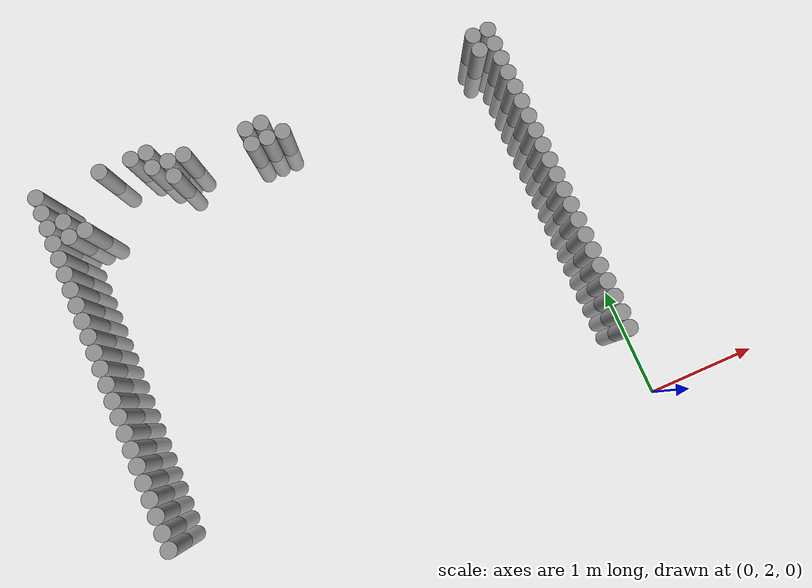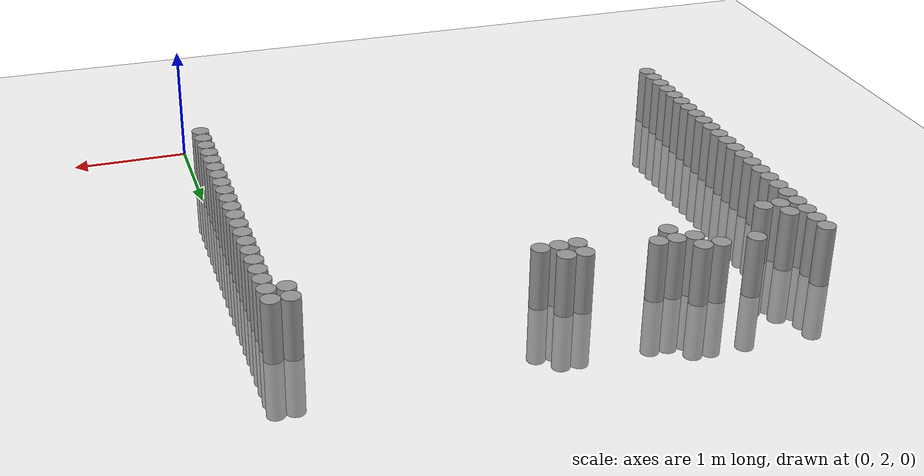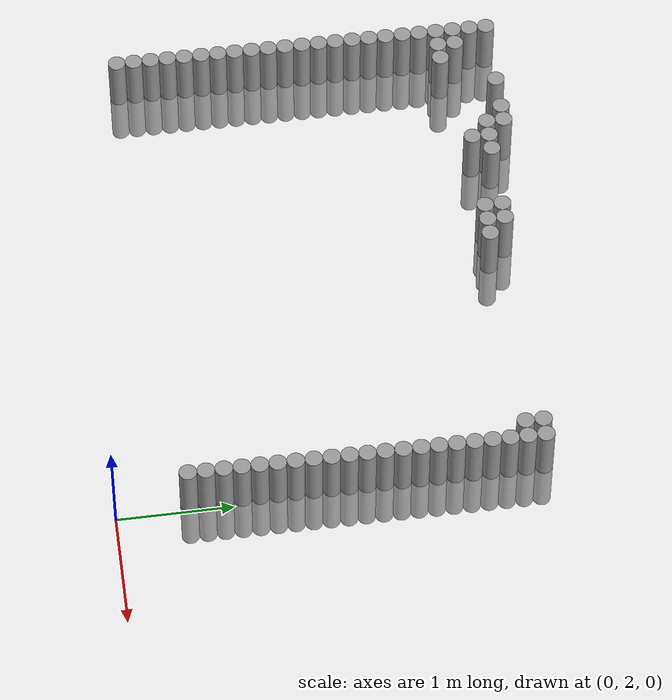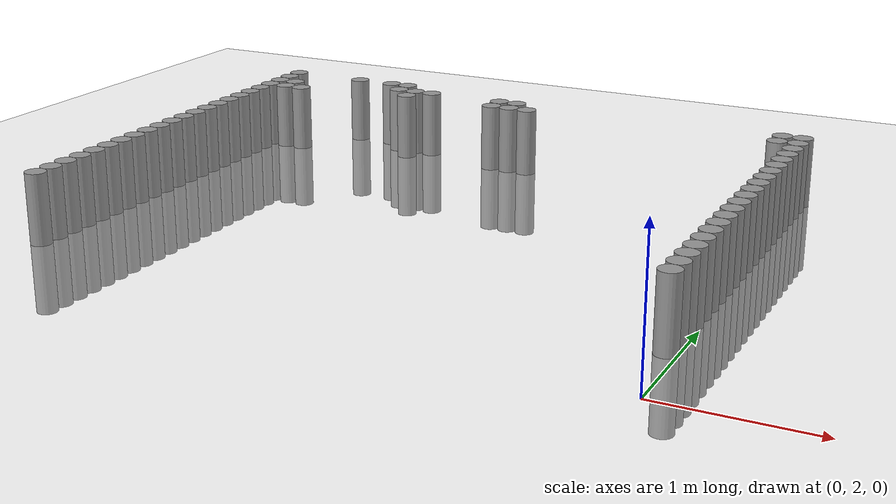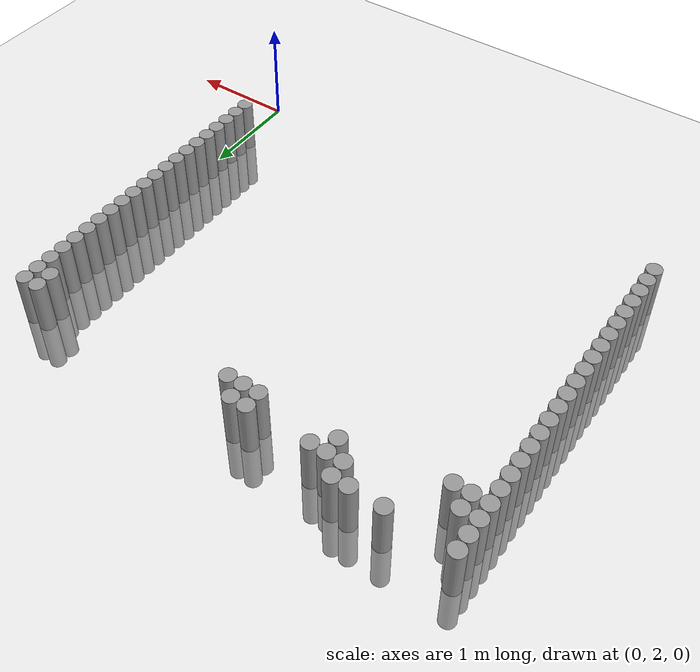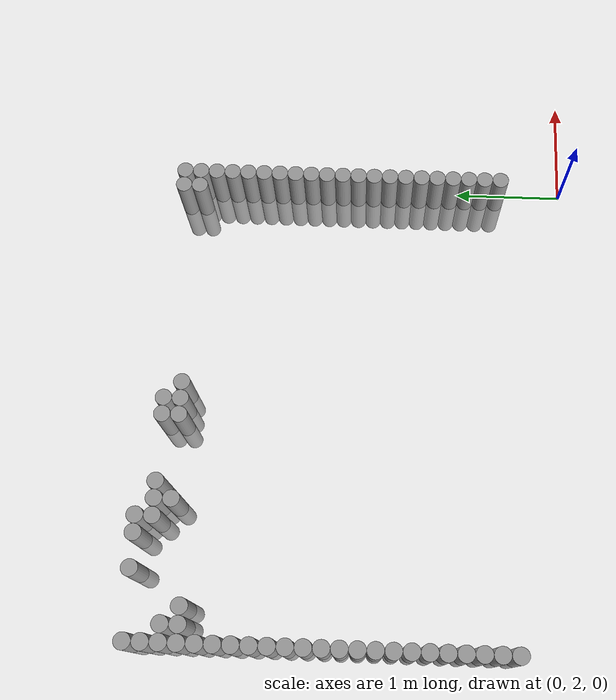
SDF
<sdf version="1.6">
 <world name="default">
  <model name="ground_plane">
   <static>1</static>
   <static>1</static>
   <link name="link">
    <collision name="collision">
     <geometry><plane><normal>0 0 1</normal><size>100 100</size></plane></geometry>
     <surface><friction><ode><mu>100</mu><mu2>50</mu2></ode></friction></surface>
    </collision>
    <visual name="visual">
     <cast_shadows>0</cast_shadows>
     <geometry><plane><normal>0 0 1</normal><size>100 100</size></plane></geometry>
     <material>
      <script><uri>file://media/materials/scripts/gazebo.material</uri><name>Gazebo/Grey</name></script>
     </material>
    </visual>
   </link>
  </model>
  <model name="unit_cylinder_61">
   <static>1</static>
   <pose>-4.425000 2.475000 0.000000 0.000000 0.000000 0.000000</pose>
   <link name="link">
    <inertial>
     <mass>1</mass>
     <inertia><ixx>0.145833</ixx><ixy>0</ixy><ixz>0</ixz><iyy>0.145833</iyy><iyz>0</iyz><izz>0.125</izz></inertia>
    </inertial>
    <collision name="collision">
     <geometry><cylinder><radius>0.075000</radius><length>1</length></cylinder></geometry>
    </collision>
    <visual name="visual">
     <geometry><cylinder><radius>0.075000</radius><length>1</length></cylinder></geometry>
     <material>
      <script><name>Gazebo/Grey</name><uri>file://media/materials/scripts/gazebo.material</uri></script>
     </material>
    </visual>
   </link>
  </model>
  <model name="unit_cylinder_62">
   <static>1</static>
   <pose>-0.075000 2.625000 0.000000 0.000000 0.000000 0.000000</pose>
   <link name="link">
    <inertial>
     <mass>1</mass>
     <inertia><ixx>0.145833</ixx><ixy>0</ixy><ixz>0</ixz><iyy>0.145833</iyy><iyz>0</iyz><izz>0.125</izz></inertia>
    </inertial>
    <collision name="collision">
     <geometry><cylinder><radius>0.075000</radius><length>1</length></cylinder></geometry>
    </collision>
    <visual name="visual">
     <geometry><cylinder><radius>0.075000</radius><length>1</length></cylinder></geometry>
     <material>
      <script><name>Gazebo/Grey</name><uri>file://media/materials/scripts/gazebo.material</uri></script>
     </material>
    </visual>
   </link>
  </model>
  <model name="unit_cylinder_63">
   <static>1</static>
   <pose>-4.425000 2.625000 0.000000 0.000000 0.000000 0.000000</pose>
   <link name="link">
    <inertial>
     <mass>1</mass>
     <inertia><ixx>0.145833</ixx><ixy>0</ixy><ixz>0</ixz><iyy>0.145833</iyy><iyz>0</iyz><izz>0.125</izz></inertia>
    </inertial>
    <collision name="collision">
     <geometry><cylinder><radius>0.075000</radius><length>1</length></cylinder></geometry>
    </collision>
    <visual name="visual">
     <geometry><cylinder><radius>0.075000</radius><length>1</length></cylinder></geometry>
     <material>
      <script><name>Gazebo/Grey</name><uri>file://media/materials/scripts/gazebo.material</uri></script>
     </material>
    </visual>
   </link>
  </model>
  <model name="unit_cylinder_64">
   <static>1</static>
   <pose>-0.075000 2.775000 0.000000 0.000000 0.000000 0.000000</pose>
   <link name="link">
    <inertial>
     <mass>1</mass>
     <inertia><ixx>0.145833</ixx><ixy>0</ixy><ixz>0</ixz><iyy>0.145833</iyy><iyz>0</iyz><izz>0.125</izz></inertia>
    </inertial>
    <collision name="collision">
     <geometry><cylinder><radius>0.075000</radius><length>1</length></cylinder></geometry>
    </collision>
    <visual name="visual">
     <geometry><cylinder><radius>0.075000</radius><length>1</length></cylinder></geometry>
     <material>
      <script><name>Gazebo/Grey</name><uri>file://media/materials/scripts/gazebo.material</uri></script>
     </material>
    </visual>
   </link>
  </model>
  <model name="unit_cylinder_65">
   <static>1</static>
   <pose>-4.425000 2.775000 0.000000 0.000000 0.000000 0.000000</pose>
   <link name="link">
    <inertial>
     <mass>1</mass>
     <inertia><ixx>0.145833</ixx><ixy>0</ixy><ixz>0</ixz><iyy>0.145833</iyy><iyz>0</iyz><izz>0.125</izz></inertia>
    </inertial>
    <collision name="collision">
     <geometry><cylinder><radius>0.075000</radius><length>1</length></cylinder></geometry>
    </collision>
    <visual name="visual">
     <geometry><cylinder><radius>0.075000</radius><length>1</length></cylinder></geometry>
     <material>
      <script><name>Gazebo/Grey</name><uri>file://media/materials/scripts/gazebo.material</uri></script>
     </material>
    </visual>
   </link>
  </model>
  <model name="unit_cylinder_66">
   <static>1</static>
   <pose>-0.075000 2.925000 0.000000 0.000000 0.000000 0.000000</pose>
   <link name="link">
    <inertial>
     <mass>1</mass>
     <inertia><ixx>0.145833</ixx><ixy>0</ixy><ixz>0</ixz><iyy>0.145833</iyy><iyz>0</iyz><izz>0.125</izz></inertia>
    </inertial>
    <collision name="collision">
     <geometry><cylinder><radius>0.075000</radius><length>1</length></cylinder></geometry>
    </collision>
    <visual name="visual">
     <geometry><cylinder><radius>0.075000</radius><length>1</length></cylinder></geometry>
     <material>
      <script><name>Gazebo/Grey</name><uri>file://media/materials/scripts/gazebo.material</uri></script>
     </material>
    </visual>
   </link>
  </model>
  <model name="unit_cylinder_67">
   <static>1</static>
   <pose>-4.425000 2.925000 0.000000 0.000000 0.000000 0.000000</pose>
   <link name="link">
    <inertial>
     <mass>1</mass>
     <inertia><ixx>0.145833</ixx><ixy>0</ixy><ixz>0</ixz><iyy>0.145833</iyy><iyz>0</iyz><izz>0.125</izz></inertia>
    </inertial>
    <collision name="collision">
     <geometry><cylinder><radius>0.075000</radius><length>1</length></cylinder></geometry>
    </collision>
    <visual name="visual">
     <geometry><cylinder><radius>0.075000</radius><length>1</length></cylinder></geometry>
     <material>
      <script><name>Gazebo/Grey</name><uri>file://media/materials/scripts/gazebo.material</uri></script>
     </material>
    </visual>
   </link>
  </model>
  <model name="unit_cylinder_68">
   <static>1</static>
   <pose>-0.075000 3.075000 0.000000 0.000000 0.000000 0.000000</pose>
   <link name="link">
    <inertial>
     <mass>1</mass>
     <inertia><ixx>0.145833</ixx><ixy>0</ixy><ixz>0</ixz><iyy>0.145833</iyy><iyz>0</iyz><izz>0.125</izz></inertia>
    </inertial>
    <collision name="collision">
     <geometry><cylinder><radius>0.075000</radius><length>1</length></cylinder></geometry>
    </collision>
    <visual name="visual">
     <geometry><cylinder><radius>0.075000</radius><length>1</length></cylinder></geometry>
     <material>
      <script><name>Gazebo/Grey</name><uri>file://media/materials/scripts/gazebo.material</uri></script>
     </material>
    </visual>
   </link>
  </model>
  <model name="unit_cylinder_69">
   <static>1</static>
   <pose>-4.425000 3.075000 0.000000 0.000000 0.000000 0.000000</pose>
   <link name="link">
    <inertial>
     <mass>1</mass>
     <inertia><ixx>0.145833</ixx><ixy>0</ixy><ixz>0</ixz><iyy>0.145833</iyy><iyz>0</iyz><izz>0.125</izz></inertia>
    </inertial>
    <collision name="collision">
     <geometry><cylinder><radius>0.075000</radius><length>1</length></cylinder></geometry>
    </collision>
    <visual name="visual">
     <geometry><cylinder><radius>0.075000</radius><length>1</length></cylinder></geometry>
     <material>
      <script><name>Gazebo/Grey</name><uri>file://media/materials/scripts/gazebo.material</uri></script>
     </material>
    </visual>
   </link>
  </model>
  <model name="unit_cylinder_70">
   <static>1</static>
   <pose>-0.075000 3.225000 0.000000 0.000000 0.000000 0.000000</pose>
   <link name="link">
    <inertial>
     <mass>1</mass>
     <inertia><ixx>0.145833</ixx><ixy>0</ixy><ixz>0</ixz><iyy>0.145833</iyy><iyz>0</iyz><izz>0.125</izz></inertia>
    </inertial>
    <collision name="collision">
     <geometry><cylinder><radius>0.075000</radius><length>1</length></cylinder></geometry>
    </collision>
    <visual name="visual">
     <geometry><cylinder><radius>0.075000</radius><length>1</length></cylinder></geometry>
     <material>
      <script><name>Gazebo/Grey</name><uri>file://media/materials/scripts/gazebo.material</uri></script>
     </material>
    </visual>
   </link>
  </model>
  <model name="unit_cylinder_71">
   <static>1</static>
   <pose>-4.425000 3.225000 0.000000 0.000000 0.000000 0.000000</pose>
   <link name="link">
    <inertial>
     <mass>1</mass>
     <inertia><ixx>0.145833</ixx><ixy>0</ixy><ixz>0</ixz><iyy>0.145833</iyy><iyz>0</iyz><izz>0.125</izz></inertia>
    </inertial>
    <collision name="collision">
     <geometry><cylinder><radius>0.075000</radius><length>1</length></cylinder></geometry>
    </collision>
    <visual name="visual">
     <geometry><cylinder><radius>0.075000</radius><length>1</length></cylinder></geometry>
     <material>
      <script><name>Gazebo/Grey</name><uri>file://media/materials/scripts/gazebo.material</uri></script>
     </material>
    </visual>
   </link>
  </model>
  <model name="unit_cylinder_72">
   <static>1</static>
   <pose>-0.075000 3.375000 0.000000 0.000000 0.000000 0.000000</pose>
   <link name="link">
    <inertial>
     <mass>1</mass>
     <inertia><ixx>0.145833</ixx><ixy>0</ixy><ixz>0</ixz><iyy>0.145833</iyy><iyz>0</iyz><izz>0.125</izz></inertia>
    </inertial>
    <collision name="collision">
     <geometry><cylinder><radius>0.075000</radius><length>1</length></cylinder></geometry>
    </collision>
    <visual name="visual">
     <geometry><cylinder><radius>0.075000</radius><length>1</length></cylinder></geometry>
     <material>
      <script><name>Gazebo/Grey</name><uri>file://media/materials/scripts/gazebo.material</uri></script>
     </material>
    </visual>
   </link>
  </model>
  <model name="unit_cylinder_73">
   <static>1</static>
   <pose>-4.425000 3.375000 0.000000 0.000000 0.000000 0.000000</pose>
   <link name="link">
    <inertial>
     <mass>1</mass>
     <inertia><ixx>0.145833</ixx><ixy>0</ixy><ixz>0</ixz><iyy>0.145833</iyy><iyz>0</iyz><izz>0.125</izz></inertia>
    </inertial>
    <collision name="collision">
     <geometry><cylinder><radius>0.075000</radius><length>1</length></cylinder></geometry>
    </collision>
    <visual name="visual">
     <geometry><cylinder><radius>0.075000</radius><length>1</length></cylinder></geometry>
     <material>
      <script><name>Gazebo/Grey</name><uri>file://media/materials/scripts/gazebo.material</uri></script>
     </material>
    </visual>
   </link>
  </model>
  <model name="unit_cylinder_74">
   <static>1</static>
   <pose>-0.075000 3.525000 0.000000 0.000000 0.000000 0.000000</pose>
   <link name="link">
    <inertial>
     <mass>1</mass>
     <inertia><ixx>0.145833</ixx><ixy>0</ixy><ixz>0</ixz><iyy>0.145833</iyy><iyz>0</iyz><izz>0.125</izz></inertia>
    </inertial>
    <collision name="collision">
     <geometry><cylinder><radius>0.075000</radius><length>1</length></cylinder></geometry>
    </collision>
    <visual name="visual">
     <geometry><cylinder><radius>0.075000</radius><length>1</length></cylinder></geometry>
     <material>
      <script><name>Gazebo/Grey</name><uri>file://media/materials/scripts/gazebo.material</uri></script>
     </material>
    </visual>
   </link>
  </model>
  <model name="unit_cylinder_75">
   <static>1</static>
   <pose>-4.425000 3.525000 0.000000 0.000000 0.000000 0.000000</pose>
   <link name="link">
    <inertial>
     <mass>1</mass>
     <inertia><ixx>0.145833</ixx><ixy>0</ixy><ixz>0</ixz><iyy>0.145833</iyy><iyz>0</iyz><izz>0.125</izz></inertia>
    </inertial>
    <collision name="collision">
     <geometry><cylinder><radius>0.075000</radius><length>1</length></cylinder></geometry>
    </collision>
    <visual name="visual">
     <geometry><cylinder><radius>0.075000</radius><length>1</length></cylinder></geometry>
     <material>
      <script><name>Gazebo/Grey</name><uri>file://media/materials/scripts/gazebo.material</uri></script>
     </material>
    </visual>
   </link>
  </model>
  <model name="unit_cylinder_76">
   <static>1</static>
   <pose>-0.075000 3.675000 0.000000 0.000000 0.000000 0.000000</pose>
   <link name="link">
    <inertial>
     <mass>1</mass>
     <inertia><ixx>0.145833</ixx><ixy>0</ixy><ixz>0</ixz><iyy>0.145833</iyy><iyz>0</iyz><izz>0.125</izz></inertia>
    </inertial>
    <collision name="collision">
     <geometry><cylinder><radius>0.075000</radius><length>1</length></cylinder></geometry>
    </collision>
    <visual name="visual">
     <geometry><cylinder><radius>0.075000</radius><length>1</length></cylinder></geometry>
     <material>
      <script><name>Gazebo/Grey</name><uri>file://media/materials/scripts/gazebo.material</uri></script>
     </material>
    </visual>
   </link>
  </model>
  <model name="unit_cylinder_77">
   <static>1</static>
   <pose>-4.425000 3.675000 0.000000 0.000000 0.000000 0.000000</pose>
   <link name="link">
    <inertial>
     <mass>1</mass>
     <inertia><ixx>0.145833</ixx><ixy>0</ixy><ixz>0</ixz><iyy>0.145833</iyy><iyz>0</iyz><izz>0.125</izz></inertia>
    </inertial>
    <collision name="collision">
     <geometry><cylinder><radius>0.075000</radius><length>1</length></cylinder></geometry>
    </collision>
    <visual name="visual">
     <geometry><cylinder><radius>0.075000</radius><length>1</length></cylinder></geometry>
     <material>
      <script><name>Gazebo/Grey</name><uri>file://media/materials/scripts/gazebo.material</uri></script>
     </material>
    </visual>
   </link>
  </model>
  <model name="unit_cylinder_78">
   <static>1</static>
   <pose>-0.075000 3.825000 0.000000 0.000000 0.000000 0.000000</pose>
   <link name="link">
    <inertial>
     <mass>1</mass>
     <inertia><ixx>0.145833</ixx><ixy>0</ixy><ixz>0</ixz><iyy>0.145833</iyy><iyz>0</iyz><izz>0.125</izz></inertia>
    </inertial>
    <collision name="collision">
     <geometry><cylinder><radius>0.075000</radius><length>1</length></cylinder></geometry>
    </collision>
    <visual name="visual">
     <geometry><cylinder><radius>0.075000</radius><length>1</length></cylinder></geometry>
     <material>
      <script><name>Gazebo/Grey</name><uri>file://media/materials/scripts/gazebo.material</uri></script>
     </material>
    </visual>
   </link>
  </model>
  <model name="unit_cylinder_79">
   <static>1</static>
   <pose>-4.425000 3.825000 0.000000 0.000000 0.000000 0.000000</pose>
   <link name="link">
    <inertial>
     <mass>1</mass>
     <inertia><ixx>0.145833</ixx><ixy>0</ixy><ixz>0</ixz><iyy>0.145833</iyy><iyz>0</iyz><izz>0.125</izz></inertia>
    </inertial>
    <collision name="collision">
     <geometry><cylinder><radius>0.075000</radius><length>1</length></cylinder></geometry>
    </collision>
    <visual name="visual">
     <geometry><cylinder><radius>0.075000</radius><length>1</length></cylinder></geometry>
     <material>
      <script><name>Gazebo/Grey</name><uri>file://media/materials/scripts/gazebo.material</uri></script>
     </material>
    </visual>
   </link>
  </model>
  <model name="unit_cylinder_80">
   <static>1</static>
   <pose>-0.075000 3.975000 0.000000 0.000000 0.000000 0.000000</pose>
   <link name="link">
    <inertial>
     <mass>1</mass>
     <inertia><ixx>0.145833</ixx><ixy>0</ixy><ixz>0</ixz><iyy>0.145833</iyy><iyz>0</iyz><izz>0.125</izz></inertia>
    </inertial>
    <collision name="collision">
     <geometry><cylinder><radius>0.075000</radius><length>1</length></cylinder></geometry>
    </collision>
    <visual name="visual">
     <geometry><cylinder><radius>0.075000</radius><length>1</length></cylinder></geometry>
     <material>
      <script><name>Gazebo/Grey</name><uri>file://media/materials/scripts/gazebo.material</uri></script>
     </material>
    </visual>
   </link>
  </model>
  <model name="unit_cylinder_81">
   <static>1</static>
   <pose>-4.425000 3.975000 0.000000 0.000000 0.000000 0.000000</pose>
   <link name="link">
    <inertial>
     <mass>1</mass>
     <inertia><ixx>0.145833</ixx><ixy>0</ixy><ixz>0</ixz><iyy>0.145833</iyy><iyz>0</iyz><izz>0.125</izz></inertia>
    </inertial>
    <collision name="collision">
     <geometry><cylinder><radius>0.075000</radius><length>1</length></cylinder></geometry>
    </collision>
    <visual name="visual">
     <geometry><cylinder><radius>0.075000</radius><length>1</length></cylinder></geometry>
     <material>
      <script><name>Gazebo/Grey</name><uri>file://media/materials/scripts/gazebo.material</uri></script>
     </material>
    </visual>
   </link>
  </model>
  <model name="unit_cylinder_82">
   <static>1</static>
   <pose>-0.075000 4.125000 0.000000 0.000000 0.000000 0.000000</pose>
   <link name="link">
    <inertial>
     <mass>1</mass>
     <inertia><ixx>0.145833</ixx><ixy>0</ixy><ixz>0</ixz><iyy>0.145833</iyy><iyz>0</iyz><izz>0.125</izz></inertia>
    </inertial>
    <collision name="collision">
     <geometry><cylinder><radius>0.075000</radius><length>1</length></cylinder></geometry>
    </collision>
    <visual name="visual">
     <geometry><cylinder><radius>0.075000</radius><length>1</length></cylinder></geometry>
     <material>
      <script><name>Gazebo/Grey</name><uri>file://media/materials/scripts/gazebo.material</uri></script>
     </material>
    </visual>
   </link>
  </model>
  <model name="unit_cylinder_83">
   <static>1</static>
   <pose>-4.425000 4.125000 0.000000 0.000000 0.000000 0.000000</pose>
   <link name="link">
    <inertial>
     <mass>1</mass>
     <inertia><ixx>0.145833</ixx><ixy>0</ixy><ixz>0</ixz><iyy>0.145833</iyy><iyz>0</iyz><izz>0.125</izz></inertia>
    </inertial>
    <collision name="collision">
     <geometry><cylinder><radius>0.075000</radius><length>1</length></cylinder></geometry>
    </collision>
    <visual name="visual">
     <geometry><cylinder><radius>0.075000</radius><length>1</length></cylinder></geometry>
     <material>
      <script><name>Gazebo/Grey</name><uri>file://media/materials/scripts/gazebo.material</uri></script>
     </material>
    </visual>
   </link>
  </model>
  <model name="unit_cylinder_84">
   <static>1</static>
   <pose>-0.075000 4.275000 0.000000 0.000000 0.000000 0.000000</pose>
   <link name="link">
    <inertial>
     <mass>1</mass>
     <inertia><ixx>0.145833</ixx><ixy>0</ixy><ixz>0</ixz><iyy>0.145833</iyy><iyz>0</iyz><izz>0.125</izz></inertia>
    </inertial>
    <collision name="collision">
     <geometry><cylinder><radius>0.075000</radius><length>1</length></cylinder></geometry>
    </collision>
    <visual name="visual">
     <geometry><cylinder><radius>0.075000</radius><length>1</length></cylinder></geometry>
     <material>
      <script><name>Gazebo/Grey</name><uri>file://media/materials/scripts/gazebo.material</uri></script>
     </material>
    </visual>
   </link>
  </model>
  <model name="unit_cylinder_85">
   <static>1</static>
   <pose>-4.425000 4.275000 0.000000 0.000000 0.000000 0.000000</pose>
   <link name="link">
    <inertial>
     <mass>1</mass>
     <inertia><ixx>0.145833</ixx><ixy>0</ixy><ixz>0</ixz><iyy>0.145833</iyy><iyz>0</iyz><izz>0.125</izz></inertia>
    </inertial>
    <collision name="collision">
     <geometry><cylinder><radius>0.075000</radius><length>1</length></cylinder></geometry>
    </collision>
    <visual name="visual">
     <geometry><cylinder><radius>0.075000</radius><length>1</length></cylinder></geometry>
     <material>
      <script><name>Gazebo/Grey</name><uri>file://media/materials/scripts/gazebo.material</uri></script>
     </material>
    </visual>
   </link>
  </model>
  <model name="unit_cylinder_86">
   <static>1</static>
   <pose>-0.075000 4.425000 0.000000 0.000000 0.000000 0.000000</pose>
   <link name="link">
    <inertial>
     <mass>1</mass>
     <inertia><ixx>0.145833</ixx><ixy>0</ixy><ixz>0</ixz><iyy>0.145833</iyy><iyz>0</iyz><izz>0.125</izz></inertia>
    </inertial>
    <collision name="collision">
     <geometry><cylinder><radius>0.075000</radius><length>1</length></cylinder></geometry>
    </collision>
    <visual name="visual">
     <geometry><cylinder><radius>0.075000</radius><length>1</length></cylinder></geometry>
     <material>
      <script><name>Gazebo/Grey</name><uri>file://media/materials/scripts/gazebo.material</uri></script>
     </material>
    </visual>
   </link>
  </model>
  <model name="unit_cylinder_87">
   <static>1</static>
   <pose>-4.425000 4.425000 0.000000 0.000000 0.000000 0.000000</pose>
   <link name="link">
    <inertial>
     <mass>1</mass>
     <inertia><ixx>0.145833</ixx><ixy>0</ixy><ixz>0</ixz><iyy>0.145833</iyy><iyz>0</iyz><izz>0.125</izz></inertia>
    </inertial>
    <collision name="collision">
     <geometry><cylinder><radius>0.075000</radius><length>1</length></cylinder></geometry>
    </collision>
    <visual name="visual">
     <geometry><cylinder><radius>0.075000</radius><length>1</length></cylinder></geometry>
     <material>
      <script><name>Gazebo/Grey</name><uri>file://media/materials/scripts/gazebo.material</uri></script>
     </material>
    </visual>
   </link>
  </model>
  <model name="unit_cylinder_88">
   <static>1</static>
   <pose>-0.075000 4.575000 0.000000 0.000000 0.000000 0.000000</pose>
   <link name="link">
    <inertial>
     <mass>1</mass>
     <inertia><ixx>0.145833</ixx><ixy>0</ixy><ixz>0</ixz><iyy>0.145833</iyy><iyz>0</iyz><izz>0.125</izz></inertia>
    </inertial>
    <collision name="collision">
     <geometry><cylinder><radius>0.075000</radius><length>1</length></cylinder></geometry>
    </collision>
    <visual name="visual">
     <geometry><cylinder><radius>0.075000</radius><length>1</length></cylinder></geometry>
     <material>
      <script><name>Gazebo/Grey</name><uri>file://media/materials/scripts/gazebo.material</uri></script>
     </material>
    </visual>
   </link>
  </model>
  <model name="unit_cylinder_89">
   <static>1</static>
   <pose>-4.425000 4.575000 0.000000 0.000000 0.000000 0.000000</pose>
   <link name="link">
    <inertial>
     <mass>1</mass>
     <inertia><ixx>0.145833</ixx><ixy>0</ixy><ixz>0</ixz><iyy>0.145833</iyy><iyz>0</iyz><izz>0.125</izz></inertia>
    </inertial>
    <collision name="collision">
     <geometry><cylinder><radius>0.075000</radius><length>1</length></cylinder></geometry>
    </collision>
    <visual name="visual">
     <geometry><cylinder><radius>0.075000</radius><length>1</length></cylinder></geometry>
     <material>
      <script><name>Gazebo/Grey</name><uri>file://media/materials/scripts/gazebo.material</uri></script>
     </material>
    </visual>
   </link>
  </model>
  <model name="unit_cylinder_90">
   <static>1</static>
   <pose>-0.075000 4.725000 0.000000 0.000000 0.000000 0.000000</pose>
   <link name="link">
    <inertial>
     <mass>1</mass>
     <inertia><ixx>0.145833</ixx><ixy>0</ixy><ixz>0</ixz><iyy>0.145833</iyy><iyz>0</iyz><izz>0.125</izz></inertia>
    </inertial>
    <collision name="collision">
     <geometry><cylinder><radius>0.075000</radius><length>1</length></cylinder></geometry>
    </collision>
    <visual name="visual">
     <geometry><cylinder><radius>0.075000</radius><length>1</length></cylinder></geometry>
     <material>
      <script><name>Gazebo/Grey</name><uri>file://media/materials/scripts/gazebo.material</uri></script>
     </material>
    </visual>
   </link>
  </model>
  <model name="unit_cylinder_91">
   <static>1</static>
   <pose>-4.425000 4.725000 0.000000 0.000000 0.000000 0.000000</pose>
   <link name="link">
    <inertial>
     <mass>1</mass>
     <inertia><ixx>0.145833</ixx><ixy>0</ixy><ixz>0</ixz><iyy>0.145833</iyy><iyz>0</iyz><izz>0.125</izz></inertia>
    </inertial>
    <collision name="collision">
     <geometry><cylinder><radius>0.075000</radius><length>1</length></cylinder></geometry>
    </collision>
    <visual name="visual">
     <geometry><cylinder><radius>0.075000</radius><length>1</length></cylinder></geometry>
     <material>
      <script><name>Gazebo/Grey</name><uri>file://media/materials/scripts/gazebo.material</uri></script>
     </material>
    </visual>
   </link>
  </model>
  <model name="unit_cylinder_92">
   <static>1</static>
   <pose>-0.075000 4.875000 0.000000 0.000000 0.000000 0.000000</pose>
   <link name="link">
    <inertial>
     <mass>1</mass>
     <inertia><ixx>0.145833</ixx><ixy>0</ixy><ixz>0</ixz><iyy>0.145833</iyy><iyz>0</iyz><izz>0.125</izz></inertia>
    </inertial>
    <collision name="collision">
     <geometry><cylinder><radius>0.075000</radius><length>1</length></cylinder></geometry>
    </collision>
    <visual name="visual">
     <geometry><cylinder><radius>0.075000</radius><length>1</length></cylinder></geometry>
     <material>
      <script><name>Gazebo/Grey</name><uri>file://media/materials/scripts/gazebo.material</uri></script>
     </material>
    </visual>
   </link>
  </model>
  <model name="unit_cylinder_93">
   <static>1</static>
   <pose>-4.425000 4.875000 0.000000 0.000000 0.000000 0.000000</pose>
   <link name="link">
    <inertial>
     <mass>1</mass>
     <inertia><ixx>0.145833</ixx><ixy>0</ixy><ixz>0</ixz><iyy>0.145833</iyy><iyz>0</iyz><izz>0.125</izz></inertia>
    </inertial>
    <collision name="collision">
     <geometry><cylinder><radius>0.075000</radius><length>1</length></cylinder></geometry>
    </collision>
    <visual name="visual">
     <geometry><cylinder><radius>0.075000</radius><length>1</length></cylinder></geometry>
     <material>
      <script><name>Gazebo/Grey</name><uri>file://media/materials/scripts/gazebo.material</uri></script>
     </material>
    </visual>
   </link>
  </model>
  <model name="unit_cylinder_94">
   <static>1</static>
   <pose>-0.075000 5.025000 0.000000 0.000000 0.000000 0.000000</pose>
   <link name="link">
    <inertial>
     <mass>1</mass>
     <inertia><ixx>0.145833</ixx><ixy>0</ixy><ixz>0</ixz><iyy>0.145833</iyy><iyz>0</iyz><izz>0.125</izz></inertia>
    </inertial>
    <collision name="collision">
     <geometry><cylinder><radius>0.075000</radius><length>1</length></cylinder></geometry>
    </collision>
    <visual name="visual">
     <geometry><cylinder><radius>0.075000</radius><length>1</length></cylinder></geometry>
     <material>
      <script><name>Gazebo/Grey</name><uri>file://media/materials/scripts/gazebo.material</uri></script>
     </material>
    </visual>
   </link>
  </model>
  <model name="unit_cylinder_95">
   <static>1</static>
   <pose>-4.425000 5.025000 0.000000 0.000000 0.000000 0.000000</pose>
   <link name="link">
    <inertial>
     <mass>1</mass>
     <inertia><ixx>0.145833</ixx><ixy>0</ixy><ixz>0</ixz><iyy>0.145833</iyy><iyz>0</iyz><izz>0.125</izz></inertia>
    </inertial>
    <collision name="collision">
     <geometry><cylinder><radius>0.075000</radius><length>1</length></cylinder></geometry>
    </collision>
    <visual name="visual">
     <geometry><cylinder><radius>0.075000</radius><length>1</length></cylinder></geometry>
     <material>
      <script><name>Gazebo/Grey</name><uri>file://media/materials/scripts/gazebo.material</uri></script>
     </material>
    </visual>
   </link>
  </model>
  <model name="unit_cylinder_96">
   <static>1</static>
   <pose>-4.425000 5.175000 0.000000 0.000000 0.000000 0.000000</pose>
   <link name="link">
    <inertial>
     <mass>1</mass>
     <inertia><ixx>0.145833</ixx><ixy>0</ixy><ixz>0</ixz><iyy>0.145833</iyy><iyz>0</iyz><izz>0.125</izz></inertia>
    </inertial>
    <collision name="collision">
     <geometry><cylinder><radius>0.075000</radius><length>1</length></cylinder></geometry>
    </collision>
    <visual name="visual">
     <geometry><cylinder><radius>0.075000</radius><length>1</length></cylinder></geometry>
     <material>
      <script><name>Gazebo/Grey</name><uri>file://media/materials/scripts/gazebo.material</uri></script>
     </material>
    </visual>
   </link>
  </model>
  <model name="unit_cylinder_97">
   <static>1</static>
   <pose>-4.425000 5.325000 0.000000 0.000000 0.000000 0.000000</pose>
   <link name="link">
    <inertial>
     <mass>1</mass>
     <inertia><ixx>0.145833</ixx><ixy>0</ixy><ixz>0</ixz><iyy>0.145833</iyy><iyz>0</iyz><izz>0.125</izz></inertia>
    </inertial>
    <collision name="collision">
     <geometry><cylinder><radius>0.075000</radius><length>1</length></cylinder></geometry>
    </collision>
    <visual name="visual">
     <geometry><cylinder><radius>0.075000</radius><length>1</length></cylinder></geometry>
     <material>
      <script><name>Gazebo/Grey</name><uri>file://media/materials/scripts/gazebo.material</uri></script>
     </material>
    </visual>
   </link>
  </model>
  <model name="unit_cylinder_98">
   <static>1</static>
   <pose>-4.425000 5.475000 0.000000 0.000000 0.000000 0.000000</pose>
   <link name="link">
    <inertial>
     <mass>1</mass>
     <inertia><ixx>0.145833</ixx><ixy>0</ixy><ixz>0</ixz><iyy>0.145833</iyy><iyz>0</iyz><izz>0.125</izz></inertia>
    </inertial>
    <collision name="collision">
     <geometry><cylinder><radius>0.075000</radius><length>1</length></cylinder></geometry>
    </collision>
    <visual name="visual">
     <geometry><cylinder><radius>0.075000</radius><length>1</length></cylinder></geometry>
     <material>
      <script><name>Gazebo/Grey</name><uri>file://media/materials/scripts/gazebo.material</uri></script>
     </material>
    </visual>
   </link>
  </model>
  <model name="unit_cylinder_99">
   <static>1</static>
   <pose>-4.425000 5.625000 0.000000 0.000000 0.000000 0.000000</pose>
   <link name="link">
    <inertial>
     <mass>1</mass>
     <inertia><ixx>0.145833</ixx><ixy>0</ixy><ixz>0</ixz><iyy>0.145833</iyy><iyz>0</iyz><izz>0.125</izz></inertia>
    </inertial>
    <collision name="collision">
     <geometry><cylinder><radius>0.075000</radius><length>1</length></cylinder></geometry>
    </collision>
    <visual name="visual">
     <geometry><cylinder><radius>0.075000</radius><length>1</length></cylinder></geometry>
     <material>
      <script><name>Gazebo/Grey</name><uri>file://media/materials/scripts/gazebo.material</uri></script>
     </material>
    </visual>
   </link>
  </model>
  <model name="unit_cylinder_100">
   <static>1</static>
   <pose>-4.425000 5.775000 0.000000 0.000000 0.000000 0.000000</pose>
   <link name="link">
    <inertial>
     <mass>1</mass>
     <inertia><ixx>0.145833</ixx><ixy>0</ixy><ixz>0</ixz><iyy>0.145833</iyy><iyz>0</iyz><izz>0.125</izz></inertia>
    </inertial>
    <collision name="collision">
     <geometry><cylinder><radius>0.075000</radius><length>1</length></cylinder></geometry>
    </collision>
    <visual name="visual">
     <geometry><cylinder><radius>0.075000</radius><length>1</length></cylinder></geometry>
     <material>
      <script><name>Gazebo/Grey</name><uri>file://media/materials/scripts/gazebo.material</uri></script>
     </material>
    </visual>
   </link>
  </model>
  <model name="unit_cylinder_126">
   <static>1</static>
   <pose>-4.275000 5.325000 0.000000 0.000000 0.000000 0.000000</pose>
   <link name="link">
    <inertial>
     <mass>1</mass>
     <inertia><ixx>0.145833</ixx><ixy>0</ixy><ixz>0</ixz><iyy>0.145833</iyy><iyz>0</iyz><izz>0.125</izz></inertia>
    </inertial>
    <collision name="collision">
     <geometry><cylinder><radius>0.075000</radius><length>1</length></cylinder></geometry>
    </collision>
    <visual name="visual">
     <geometry><cylinder><radius>0.075000</radius><length>1</length></cylinder></geometry>
     <material>
      <script><name>Gazebo/Grey</name><uri>file://media/materials/scripts/gazebo.material</uri></script>
     </material>
    </visual>
   </link>
  </model>
  <model name="unit_cylinder_127">
   <static>1</static>
   <pose>-4.275000 5.475000 0.000000 0.000000 0.000000 0.000000</pose>
   <link name="link">
    <inertial>
     <mass>1</mass>
     <inertia><ixx>0.145833</ixx><ixy>0</ixy><ixz>0</ixz><iyy>0.145833</iyy><iyz>0</iyz><izz>0.125</izz></inertia>
    </inertial>
    <collision name="collision">
     <geometry><cylinder><radius>0.075000</radius><length>1</length></cylinder></geometry>
    </collision>
    <visual name="visual">
     <geometry><cylinder><radius>0.075000</radius><length>1</length></cylinder></geometry>
     <material>
      <script><name>Gazebo/Grey</name><uri>file://media/materials/scripts/gazebo.material</uri></script>
     </material>
    </visual>
   </link>
  </model>
  <model name="unit_cylinder_137">
   <static>1</static>
   <pose>-4.125000 5.325000 0.000000 0.000000 0.000000 0.000000</pose>
   <link name="link">
    <inertial>
     <mass>1</mass>
     <inertia><ixx>0.145833</ixx><ixy>0</ixy><ixz>0</ixz><iyy>0.145833</iyy><iyz>0</iyz><izz>0.125</izz></inertia>
    </inertial>
    <collision name="collision">
     <geometry><cylinder><radius>0.075000</radius><length>1</length></cylinder></geometry>
    </collision>
    <visual name="visual">
     <geometry><cylinder><radius>0.075000</radius><length>1</length></cylinder></geometry>
     <material>
      <script><name>Gazebo/Grey</name><uri>file://media/materials/scripts/gazebo.material</uri></script>
     </material>
    </visual>
   </link>
  </model>
  <model name="unit_cylinder_152">
   <static>1</static>
   <pose>-3.825000 5.775000 0.000000 0.000000 0.000000 0.000000</pose>
   <link name="link">
    <inertial>
     <mass>1</mass>
     <inertia><ixx>0.145833</ixx><ixy>0</ixy><ixz>0</ixz><iyy>0.145833</iyy><iyz>0</iyz><izz>0.125</izz></inertia>
    </inertial>
    <collision name="collision">
     <geometry><cylinder><radius>0.075000</radius><length>1</length></cylinder></geometry>
    </collision>
    <visual name="visual">
     <geometry><cylinder><radius>0.075000</radius><length>1</length></cylinder></geometry>
     <material>
      <script><name>Gazebo/Grey</name><uri>file://media/materials/scripts/gazebo.material</uri></script>
     </material>
    </visual>
   </link>
  </model>
  <model name="unit_cylinder_158">
   <static>1</static>
   <pose>-3.525000 5.775000 0.000000 0.000000 0.000000 0.000000</pose>
   <link name="link">
    <inertial>
     <mass>1</mass>
     <inertia><ixx>0.145833</ixx><ixy>0</ixy><ixz>0</ixz><iyy>0.145833</iyy><iyz>0</iyz><izz>0.125</izz></inertia>
    </inertial>
    <collision name="collision">
     <geometry><cylinder><radius>0.075000</radius><length>1</length></cylinder></geometry>
    </collision>
    <visual name="visual">
     <geometry><cylinder><radius>0.075000</radius><length>1</length></cylinder></geometry>
     <material>
      <script><name>Gazebo/Grey</name><uri>file://media/materials/scripts/gazebo.material</uri></script>
     </material>
    </visual>
   </link>
  </model>
  <model name="unit_cylinder_164">
   <static>1</static>
   <pose>-3.375000 5.625000 0.000000 0.000000 0.000000 0.000000</pose>
   <link name="link">
    <inertial>
     <mass>1</mass>
     <inertia><ixx>0.145833</ixx><ixy>0</ixy><ixz>0</ixz><iyy>0.145833</iyy><iyz>0</iyz><izz>0.125</izz></inertia>
    </inertial>
    <collision name="collision">
     <geometry><cylinder><radius>0.075000</radius><length>1</length></cylinder></geometry>
    </collision>
    <visual name="visual">
     <geometry><cylinder><radius>0.075000</radius><length>1</length></cylinder></geometry>
     <material>
      <script><name>Gazebo/Grey</name><uri>file://media/materials/scripts/gazebo.material</uri></script>
     </material>
    </visual>
   </link>
  </model>
  <model name="unit_cylinder_165">
   <static>1</static>
   <pose>-3.375000 5.775000 0.000000 0.000000 0.000000 0.000000</pose>
   <link name="link">
    <inertial>
     <mass>1</mass>
     <inertia><ixx>0.145833</ixx><ixy>0</ixy><ixz>0</ixz><iyy>0.145833</iyy><iyz>0</iyz><izz>0.125</izz></inertia>
    </inertial>
    <collision name="collision">
     <geometry><cylinder><radius>0.075000</radius><length>1</length></cylinder></geometry>
    </collision>
    <visual name="visual">
     <geometry><cylinder><radius>0.075000</radius><length>1</length></cylinder></geometry>
     <material>
      <script><name>Gazebo/Grey</name><uri>file://media/materials/scripts/gazebo.material</uri></script>
     </material>
    </visual>
   </link>
  </model>
  <model name="unit_cylinder_170">
   <static>1</static>
   <pose>-3.225000 5.475000 0.000000 0.000000 0.000000 0.000000</pose>
   <link name="link">
    <inertial>
     <mass>1</mass>
     <inertia><ixx>0.145833</ixx><ixy>0</ixy><ixz>0</ixz><iyy>0.145833</iyy><iyz>0</iyz><izz>0.125</izz></inertia>
    </inertial>
    <collision name="collision">
     <geometry><cylinder><radius>0.075000</radius><length>1</length></cylinder></geometry>
    </collision>
    <visual name="visual">
     <geometry><cylinder><radius>0.075000</radius><length>1</length></cylinder></geometry>
     <material>
      <script><name>Gazebo/Grey</name><uri>file://media/materials/scripts/gazebo.material</uri></script>
     </material>
    </visual>
   </link>
  </model>
  <model name="unit_cylinder_171">
   <static>1</static>
   <pose>-3.225000 5.625000 0.000000 0.000000 0.000000 0.000000</pose>
   <link name="link">
    <inertial>
     <mass>1</mass>
     <inertia><ixx>0.145833</ixx><ixy>0</ixy><ixz>0</ixz><iyy>0.145833</iyy><iyz>0</iyz><izz>0.125</izz></inertia>
    </inertial>
    <collision name="collision">
     <geometry><cylinder><radius>0.075000</radius><length>1</length></cylinder></geometry>
    </collision>
    <visual name="visual">
     <geometry><cylinder><radius>0.075000</radius><length>1</length></cylinder></geometry>
     <material>
      <script><name>Gazebo/Grey</name><uri>file://media/materials/scripts/gazebo.material</uri></script>
     </material>
    </visual>
   </link>
  </model>
  <model name="unit_cylinder_177">
   <static>1</static>
   <pose>-3.075000 5.625000 0.000000 0.000000 0.000000 0.000000</pose>
   <link name="link">
    <inertial>
     <mass>1</mass>
     <inertia><ixx>0.145833</ixx><ixy>0</ixy><ixz>0</ixz><iyy>0.145833</iyy><iyz>0</iyz><izz>0.125</izz></inertia>
    </inertial>
    <collision name="collision">
     <geometry><cylinder><radius>0.075000</radius><length>1</length></cylinder></geometry>
    </collision>
    <visual name="visual">
     <geometry><cylinder><radius>0.075000</radius><length>1</length></cylinder></geometry>
     <material>
      <script><name>Gazebo/Grey</name><uri>file://media/materials/scripts/gazebo.material</uri></script>
     </material>
    </visual>
   </link>
  </model>
  <model name="unit_cylinder_208">
   <static>1</static>
   <pose>-2.475000 5.475000 0.000000 0.000000 0.000000 0.000000</pose>
   <link name="link">
    <inertial>
     <mass>1</mass>
     <inertia><ixx>0.145833</ixx><ixy>0</ixy><ixz>0</ixz><iyy>0.145833</iyy><iyz>0</iyz><izz>0.125</izz></inertia>
    </inertial>
    <collision name="collision">
     <geometry><cylinder><radius>0.075000</radius><length>1</length></cylinder></geometry>
    </collision>
    <visual name="visual">
     <geometry><cylinder><radius>0.075000</radius><length>1</length></cylinder></geometry>
     <material>
      <script><name>Gazebo/Grey</name><uri>file://media/materials/scripts/gazebo.material</uri></script>
     </material>
    </visual>
   </link>
  </model>
  <model name="unit_cylinder_209">
   <static>1</static>
   <pose>-2.475000 5.625000 0.000000 0.000000 0.000000 0.000000</pose>
   <link name="link">
    <inertial>
     <mass>1</mass>
     <inertia><ixx>0.145833</ixx><ixy>0</ixy><ixz>0</ixz><iyy>0.145833</iyy><iyz>0</iyz><izz>0.125</izz></inertia>
    </inertial>
    <collision name="collision">
     <geometry><cylinder><radius>0.075000</radius><length>1</length></cylinder></geometry>
    </collision>
    <visual name="visual">
     <geometry><cylinder><radius>0.075000</radius><length>1</length></cylinder></geometry>
     <material>
      <script><name>Gazebo/Grey</name><uri>file://media/materials/scripts/gazebo.material</uri></script>
     </material>
    </visual>
   </link>
  </model>
  <model name="unit_cylinder_215">
   <static>1</static>
   <pose>-2.325000 5.475000 0.000000 0.000000 0.000000 0.000000</pose>
   <link name="link">
    <inertial>
     <mass>1</mass>
     <inertia><ixx>0.145833</ixx><ixy>0</ixy><ixz>0</ixz><iyy>0.145833</iyy><iyz>0</iyz><izz>0.125</izz></inertia>
    </inertial>
    <collision name="collision">
     <geometry><cylinder><radius>0.075000</radius><length>1</length></cylinder></geometry>
    </collision>
    <visual name="visual">
     <geometry><cylinder><radius>0.075000</radius><length>1</length></cylinder></geometry>
     <material>
      <script><name>Gazebo/Grey</name><uri>file://media/materials/scripts/gazebo.material</uri></script>
     </material>
    </visual>
   </link>
  </model>
  <model name="unit_cylinder_216">
   <static>1</static>
   <pose>-2.325000 5.625000 0.000000 0.000000 0.000000 0.000000</pose>
   <link name="link">
    <inertial>
     <mass>1</mass>
     <inertia><ixx>0.145833</ixx><ixy>0</ixy><ixz>0</ixz><iyy>0.145833</iyy><iyz>0</iyz><izz>0.125</izz></inertia>
    </inertial>
    <collision name="collision">
     <geometry><cylinder><radius>0.075000</radius><length>1</length></cylinder></geometry>
    </collision>
    <visual name="visual">
     <geometry><cylinder><radius>0.075000</radius><length>1</length></cylinder></geometry>
     <material>
      <script><name>Gazebo/Grey</name><uri>file://media/materials/scripts/gazebo.material</uri></script>
     </material>
    </visual>
   </link>
  </model>
  <model name="unit_cylinder_219">
   <static>1</static>
   <pose>-2.175000 5.475000 0.000000 0.000000 0.000000 0.000000</pose>
   <link name="link">
    <inertial>
     <mass>1</mass>
     <inertia><ixx>0.145833</ixx><ixy>0</ixy><ixz>0</ixz><iyy>0.145833</iyy><iyz>0</iyz><izz>0.125</izz></inertia>
    </inertial>
    <collision name="collision">
     <geometry><cylinder><radius>0.075000</radius><length>1</length></cylinder></geometry>
    </collision>
    <visual name="visual">
     <geometry><cylinder><radius>0.075000</radius><length>1</length></cylinder></geometry>
     <material>
      <script><name>Gazebo/Grey</name><uri>file://media/materials/scripts/gazebo.material</uri></script>
     </material>
    </visual>
   </link>
  </model>
  <model name="unit_cylinder_257">
   <static>1</static>
   <pose>-0.225000 5.475000 0.000000 0.000000 0.000000 0.000000</pose>
   <link name="link">
    <inertial>
     <mass>1</mass>
     <inertia><ixx>0.145833</ixx><ixy>0</ixy><ixz>0</ixz><iyy>0.145833</iyy><iyz>0</iyz><izz>0.125</izz></inertia>
    </inertial>
    <collision name="collision">
     <geometry><cylinder><radius>0.075000</radius><length>1</length></cylinder></geometry>
    </collision>
    <visual name="visual">
     <geometry><cylinder><radius>0.075000</radius><length>1</length></cylinder></geometry>
     <material>
      <script><name>Gazebo/Grey</name><uri>file://media/materials/scripts/gazebo.material</uri></script>
     </material>
    </visual>
   </link>
  </model>
  <model name="unit_cylinder_258">
   <static>1</static>
   <pose>-0.225000 5.625000 0.000000 0.000000 0.000000 0.000000</pose>
   <link name="link">
    <inertial>
     <mass>1</mass>
     <inertia><ixx>0.145833</ixx><ixy>0</ixy><ixz>0</ixz><iyy>0.145833</iyy><iyz>0</iyz><izz>0.125</izz></inertia>
    </inertial>
    <collision name="collision">
     <geometry><cylinder><radius>0.075000</radius><length>1</length></cylinder></geometry>
    </collision>
    <visual name="visual">
     <geometry><cylinder><radius>0.075000</radius><length>1</length></cylinder></geometry>
     <material>
      <script><name>Gazebo/Grey</name><uri>file://media/materials/scripts/gazebo.material</uri></script>
     </material>
    </visual>
   </link>
  </model>
  <model name="unit_cylinder_274">
   <static>1</static>
   <pose>-0.075000 5.175000 0.000000 0.000000 0.000000 0.000000</pose>
   <link name="link">
    <inertial>
     <mass>1</mass>
     <inertia><ixx>0.145833</ixx><ixy>0</ixy><ixz>0</ixz><iyy>0.145833</iyy><iyz>0</iyz><izz>0.125</izz></inertia>
    </inertial>
    <collision name="collision">
     <geometry><cylinder><radius>0.075000</radius><length>1</length></cylinder></geometry>
    </collision>
    <visual name="visual">
     <geometry><cylinder><radius>0.075000</radius><length>1</length></cylinder></geometry>
     <material>
      <script><name>Gazebo/Grey</name><uri>file://media/materials/scripts/gazebo.material</uri></script>
     </material>
    </visual>
   </link>
  </model>
  <model name="unit_cylinder_275">
   <static>1</static>
   <pose>-0.075000 5.325000 0.000000 0.000000 0.000000 0.000000</pose>
   <link name="link">
    <inertial>
     <mass>1</mass>
     <inertia><ixx>0.145833</ixx><ixy>0</ixy><ixz>0</ixz><iyy>0.145833</iyy><iyz>0</iyz><izz>0.125</izz></inertia>
    </inertial>
    <collision name="collision">
     <geometry><cylinder><radius>0.075000</radius><length>1</length></cylinder></geometry>
    </collision>
    <visual name="visual">
     <geometry><cylinder><radius>0.075000</radius><length>1</length></cylinder></geometry>
     <material>
      <script><name>Gazebo/Grey</name><uri>file://media/materials/scripts/gazebo.material</uri></script>
     </material>
    </visual>
   </link>
  </model>
  <model name="unit_cylinder_276">
   <static>1</static>
   <pose>-0.075000 5.475000 0.000000 0.000000 0.000000 0.000000</pose>
   <link name="link">
    <inertial>
     <mass>1</mass>
     <inertia><ixx>0.145833</ixx><ixy>0</ixy><ixz>0</ixz><iyy>0.145833</iyy><iyz>0</iyz><izz>0.125</izz></inertia>
    </inertial>
    <collision name="collision">
     <geometry><cylinder><radius>0.075000</radius><length>1</length></cylinder></geometry>
    </collision>
    <visual name="visual">
     <geometry><cylinder><radius>0.075000</radius><length>1</length></cylinder></geometry>
     <material>
      <script><name>Gazebo/Grey</name><uri>file://media/materials/scripts/gazebo.material</uri></script>
     </material>
    </visual>
   </link>
  </model>
  <model name="unit_cylinder_277">
   <static>1</static>
   <pose>-0.075000 5.625000 0.000000 0.000000 0.000000 0.000000</pose>
   <link name="link">
    <inertial>
     <mass>1</mass>
     <inertia><ixx>0.145833</ixx><ixy>0</ixy><ixz>0</ixz><iyy>0.145833</iyy><iyz>0</iyz><izz>0.125</izz></inertia>
    </inertial>
    <collision name="collision">
     <geometry><cylinder><radius>0.075000</radius><length>1</length></cylinder></geometry>
    </collision>
    <visual name="visual">
     <geometry><cylinder><radius>0.075000</radius><length>1</length></cylinder></geometry>
     <material>
      <script><name>Gazebo/Grey</name><uri>file://media/materials/scripts/gazebo.material</uri></script>
     </material>
    </visual>
   </link>
  </model>
 </world>
</sdf>
